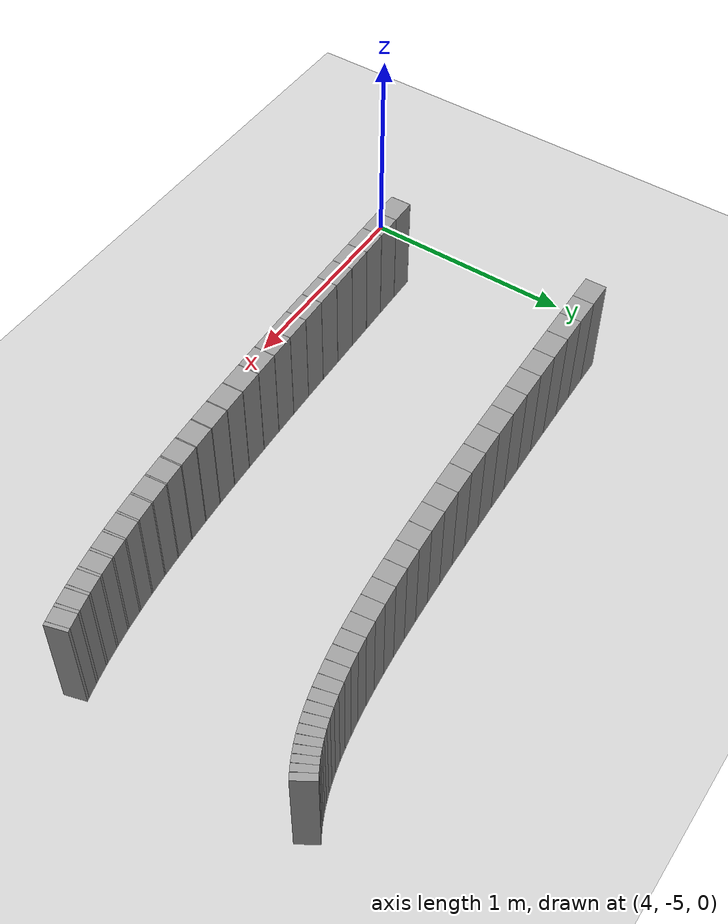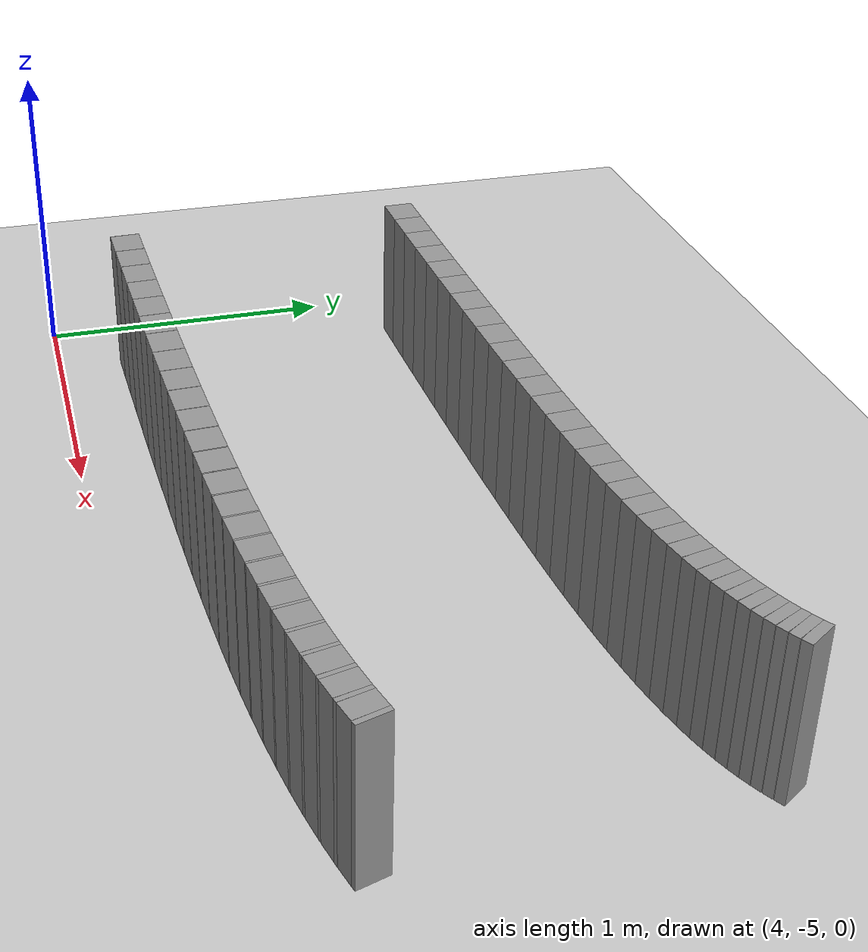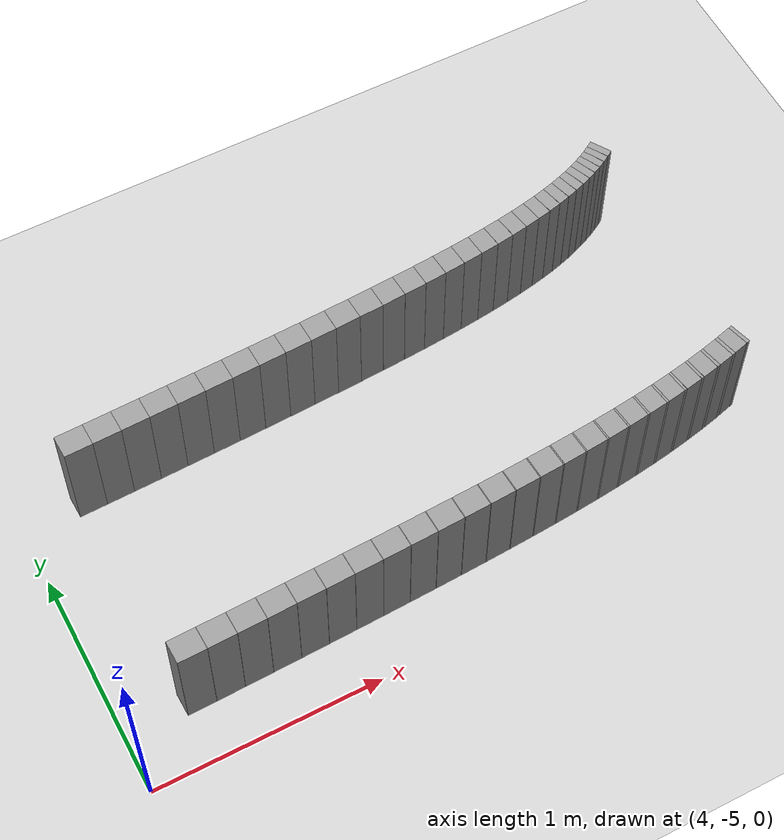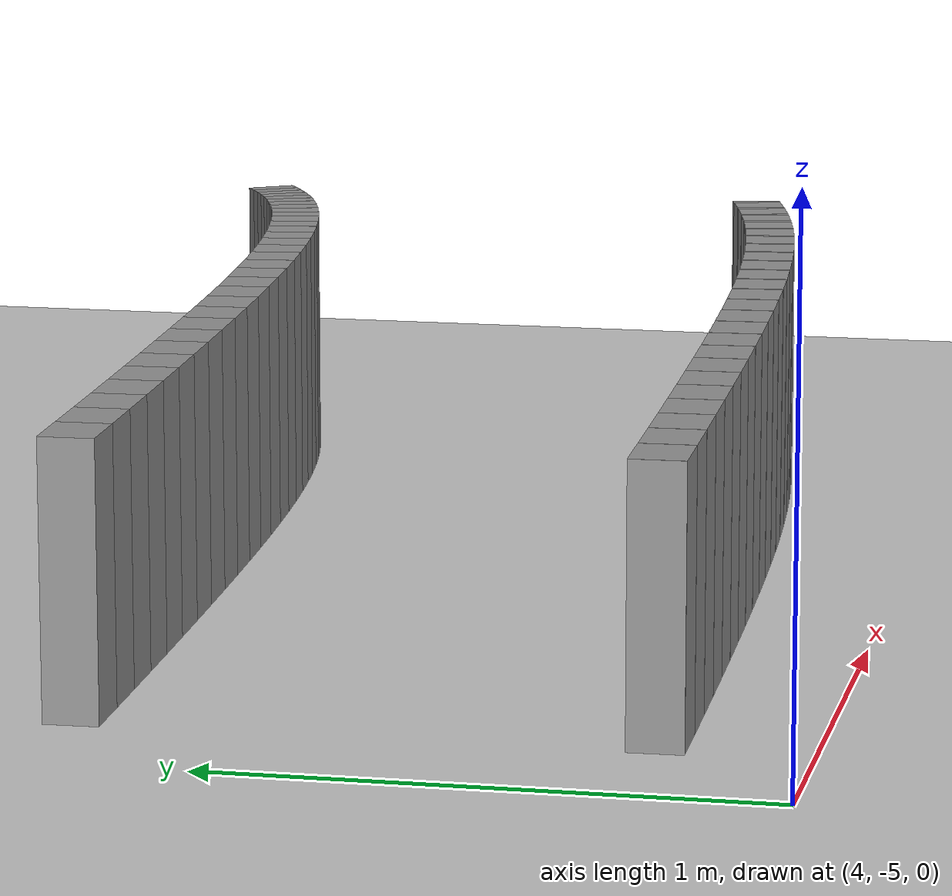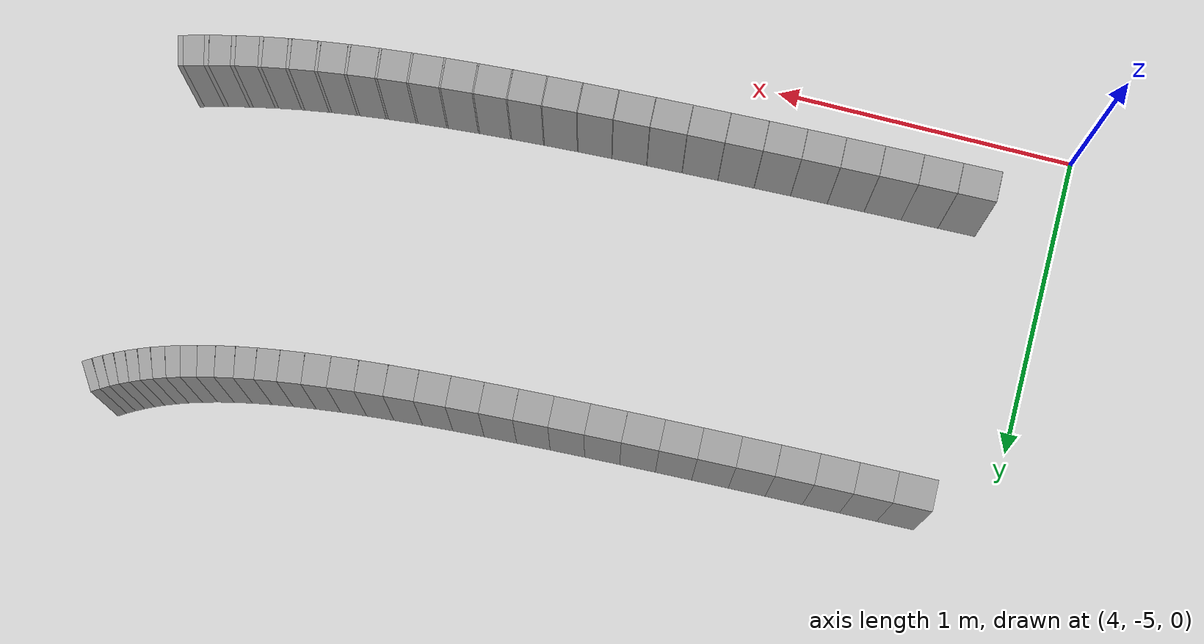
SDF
<sdf version="1.6">
 <world name="default">
  <include><uri>model://ground_plane</uri></include>
  <include><uri>model://sun</uri></include>
  <model name="wall_321_outward">
   <static>true</static>
   <link name="link">
    <collision name="collision">
     <geometry><box><size>0.016284881195735904 0.1 0.5</size></box></geometry>
    </collision>
    <visual name="visual">
     <geometry><box><size>0.016284881195735904 0.1 0.5</size></box></geometry>
     <material>
      <script><uri>file://media/materials/scripts/gazebo.material</uri><name>Gazebo/Gray</name></script>
     </material>
    </visual>
   </link>
   <pose>6.8706232250693535 -4.524469755336314 0.25 0 0 -2.8617187133901116</pose>
  </model>
  <model name="wall_322_outward">
   <static>true</static>
   <link name="link">
    <collision name="collision">
     <geometry><box><size>0.06675246878752088 0.1 0.5</size></box></geometry>
    </collision>
    <visual name="visual">
     <geometry><box><size>0.06675246878752088 0.1 0.5</size></box></geometry>
     <material>
      <script><uri>file://media/materials/scripts/gazebo.material</uri><name>Gazebo/Gray</name></script>
     </material>
    </visual>
   </link>
   <pose>6.830574143133701 -4.535415043514214 0.25 0 0 -2.8780043144562817</pose>
  </model>
  <model name="wall_323_outward">
   <static>true</static>
   <link name="link">
    <collision name="collision">
     <geometry><box><size>0.015074363451593187 0.1 0.5</size></box></geometry>
    </collision>
    <visual name="visual">
     <geometry><box><size>0.015074363451593187 0.1 0.5</size></box></geometry>
     <material>
      <script><uri>file://media/materials/scripts/gazebo.material</uri><name>Gazebo/Gray</name></script>
     </material>
    </visual>
   </link>
   <pose>6.791045048589535 -4.545964978851544 0.25 0 0 -2.8930792488737502</pose>
  </model>
  <model name="wall_324_outward">
   <static>true</static>
   <link name="link">
    <collision name="collision">
     <geometry><box><size>0.07023694185846778 0.1 0.5</size></box></geometry>
    </collision>
    <visual name="visual">
     <geometry><box><size>0.07023694185846778 0.1 0.5</size></box></geometry>
     <material>
      <script><uri>file://media/materials/scripts/gazebo.material</uri><name>Gazebo/Gray</name></script>
     </material>
    </visual>
   </link>
   <pose>6.749573471816234 -4.55594259739293 0.25 0 0 -2.908154183291117</pose>
  </model>
  <model name="wall_325_outward">
   <static>true</static>
   <link name="link">
    <collision name="collision">
     <geometry><box><size>0.013815712884839529 0.1 0.5</size></box></geometry>
    </collision>
    <visual name="visual">
     <geometry><box><size>0.013815712884839529 0.1 0.5</size></box></geometry>
     <material>
      <script><uri>file://media/materials/scripts/gazebo.material</uri><name>Gazebo/Gray</name></script>
     </material>
    </visual>
   </link>
   <pose>6.708665599710844 -4.565571298510074 0.25 0 0 -2.9219703357235964</pose>
  </model>
  <model name="wall_326_outward">
   <static>true</static>
   <link name="link">
    <collision name="collision">
     <geometry><box><size>0.07394708657889154 0.1 0.5</size></box></geometry>
    </collision>
    <visual name="visual">
     <geometry><box><size>0.07394708657889154 0.1 0.5</size></box></geometry>
     <material>
      <script><uri>file://media/materials/scripts/gazebo.material</uri><name>Gazebo/Gray</name></script>
     </material>
    </visual>
   </link>
   <pose>6.665730397106101 -4.574632030637089 0.25 0 0 -2.935786488156076</pose>
  </model>
  <model name="wall_327_outward">
   <static>true</static>
   <link name="link">
    <collision name="collision">
     <geometry><box><size>0.012546293367395168 0.1 0.5</size></box></geometry>
    </collision>
    <visual name="visual">
     <geometry><box><size>0.012546293367395168 0.1 0.5</size></box></geometry>
     <material>
      <script><uri>file://media/materials/scripts/gazebo.material</uri><name>Gazebo/Gray</name></script>
     </material>
    </visual>
   </link>
   <pose>6.623380760675244 -4.583392622896973 0.25 0 0 -2.948333110697676</pose>
  </model>
  <model name="wall_328_outward">
   <static>true</static>
   <link name="link">
    <collision name="collision">
     <geometry><box><size>0.07782937117657446 0.1 0.5</size></box></geometry>
    </collision>
    <visual name="visual">
     <geometry><box><size>0.07782937117657446 0.1 0.5</size></box></geometry>
     <material>
      <script><uri>file://media/materials/scripts/gazebo.material</uri><name>Gazebo/Gray</name></script>
     </material>
    </visual>
   </link>
   <pose>6.578943407078501 -4.591591608372864 0.25 0 0 -2.960879733239329</pose>
  </model>
  <model name="wall_329_outward">
   <static>true</static>
   <link name="link">
    <collision name="collision">
     <geometry><box><size>0.011294293351724943 0.1 0.5</size></box></geometry>
    </collision>
    <visual name="visual">
     <geometry><box><size>0.011294293351724943 0.1 0.5</size></box></geometry>
     <material>
      <script><uri>file://media/materials/scripts/gazebo.material</uri><name>Gazebo/Gray</name></script>
     </material>
    </visual>
   </link>
   <pose>6.535096119194367 -4.599537941276894 0.25 0 0 -2.9721742667235302</pose>
  </model>
  <model name="wall_330_outward">
   <static>true</static>
   <link name="link">
    <collision name="collision">
     <geometry><box><size>0.08182628097295579 0.1 0.5</size></box></geometry>
    </collision>
    <visual name="visual">
     <geometry><box><size>0.08182628097295579 0.1 0.5</size></box></geometry>
     <material>
      <script><uri>file://media/materials/scripts/gazebo.material</uri><name>Gazebo/Gray</name></script>
     </material>
    </visual>
   </link>
   <pose>6.489127096165799 -4.606932519660496 0.25 0 0 -2.9834688002077003</pose>
  </model>
  <model name="wall_331_outward">
   <static>true</static>
   <link name="link">
    <collision name="collision">
     <geometry><box><size>0.010081128905444778 0.1 0.5</size></box></geometry>
    </collision>
    <visual name="visual">
     <geometry><box><size>0.010081128905444778 0.1 0.5</size></box></geometry>
     <material>
      <script><uri>file://media/materials/scripts/gazebo.material</uri><name>Gazebo/Gray</name></script>
     </material>
    </visual>
   </link>
   <pose>6.443738940358317 -4.614118433032928 0.25 0 0 -2.9935500998770435</pose>
  </model>
  <model name="wall_332_outward">
   <static>true</static>
   <link name="link">
    <collision name="collision">
     <geometry><box><size>0.08588152892066375 0.1 0.5</size></box></geometry>
    </collision>
    <visual name="visual">
     <geometry><box><size>0.08588152892066375 0.1 0.5</size></box></geometry>
     <material>
      <script><uri>file://media/materials/scripts/gazebo.material</uri><name>Gazebo/Gray</name></script>
     </material>
    </visual>
   </link>
   <pose>6.396220751281994 -4.620767315150769 0.25 0 0 -3.00363139954643</pose>
  </model>
  <model name="wall_333_outward">
   <static>true</static>
   <link name="link">
    <collision name="collision">
     <geometry><box><size>0.00892297963676916 0.1 0.5</size></box></geometry>
    </collision>
    <visual name="visual">
     <geometry><box><size>0.00892297963676916 0.1 0.5</size></box></geometry>
     <material>
      <script><uri>file://media/materials/scripts/gazebo.material</uri><name>Gazebo/Gray</name></script>
     </material>
    </visual>
   </link>
   <pose>6.3492635939150475 -4.6272468081029245 0.25 0 0 -3.0125544975947935</pose>
  </model>
  <model name="wall_334_outward">
   <static>true</static>
   <link name="link">
    <collision name="collision">
     <geometry><box><size>0.0899364490261822 0.1 0.5</size></box></geometry>
    </collision>
    <visual name="visual">
     <geometry><box><size>0.0899364490261822 0.1 0.5</size></box></geometry>
     <material>
      <script><uri>file://media/materials/scripts/gazebo.material</uri><name>Gazebo/Gray</name></script>
     </material>
    </visual>
   </link>
   <pose>6.300194974419981 -4.633209296318802 0.25 0 0 -3.0214775956430406</pose>
  </model>
  <model name="wall_335_outward">
   <static>true</static>
   <link name="link">
    <collision name="collision">
     <geometry><box><size>0.00782467770578832 0.1 0.5</size></box></geometry>
    </collision>
    <visual name="visual">
     <geometry><box><size>0.00782467770578832 0.1 0.5</size></box></geometry>
     <material>
      <script><uri>file://media/materials/scripts/gazebo.material</uri><name>Gazebo/Gray</name></script>
     </material>
    </visual>
   </link>
   <pose>6.251663053264009 -4.639036073493887 0.25 0 0 -3.0293023531960386</pose>
  </model>
  <model name="wall_336_outward">
   <static>true</static>
   <link name="link">
    <collision name="collision">
     <geometry><box><size>0.09393741478682598 0.1 0.5</size></box></geometry>
    </collision>
    <visual name="visual">
     <geometry><box><size>0.09393741478682598 0.1 0.5</size></box></geometry>
     <material>
      <script><uri>file://media/materials/scripts/gazebo.material</uri><name>Gazebo/Gray</name></script>
     </material>
    </visual>
   </link>
   <pose>6.201062699600262 -4.644372160580012 0.25 0 0 -3.0371271107491635</pose>
  </model>
  <model name="wall_337_outward">
   <static>true</static>
   <link name="link">
    <collision name="collision">
     <geometry><box><size>0.006793686530829893 0.1 0.5</size></box></geometry>
    </collision>
    <visual name="visual">
     <geometry><box><size>0.006793686530829893 0.1 0.5</size></box></geometry>
     <material>
      <script><uri>file://media/materials/scripts/gazebo.material</uri><name>Gazebo/Gray</name></script>
     </material>
    </visual>
   </link>
   <pose>6.150969391566424 -4.649601101163466 0.25 0 0 -3.043920849540613</pose>
  </model>
  <model name="wall_338_outward">
   <static>true</static>
   <link name="link">
    <collision name="collision"><geometry><box><size>0.097832188326034 0.1 0.5</size></box></geometry></collision>
    <visual name="visual">
     <geometry><box><size>0.097832188326034 0.1 0.5</size></box></geometry>
     <material>
      <script><uri>file://media/materials/scripts/gazebo.material</uri><name>Gazebo/Gray</name></script>
     </material>
    </visual>
   </link>
   <pose>6.098874499526229 -4.654371633275395 0.25 0 0 -3.050714588331997</pose>
  </model>
  <model name="wall_339_outward">
   <static>true</static>
   <link name="link">
    <collision name="collision">
     <geometry><box><size>0.005836300525711811 0.1 0.5</size></box></geometry>
    </collision>
    <visual name="visual">
     <geometry><box><size>0.005836300525711811 0.1 0.5</size></box></geometry>
     <material>
      <script><uri>file://media/materials/scripts/gazebo.material</uri><name>Gazebo/Gray</name></script>
     </material>
    </visual>
   </link>
   <pose>6.047252656607898 -4.659058782371988 0.25 0 0 -3.0565509219912914</pose>
  </model>
  <model name="wall_340_outward">
   <static>true</static>
   <link name="link">
    <collision name="collision">
     <geometry><box><size>0.10157281790004317 0.1 0.5</size></box></geometry>
    </collision>
    <visual name="visual">
     <geometry><box><size>0.10157281790004317 0.1 0.5</size></box></geometry>
     <material>
      <script><uri>file://media/materials/scripts/gazebo.material</uri><name>Gazebo/Gray</name></script>
     </material>
    </visual>
   </link>
   <pose>5.993717864086115 -4.663325001040443 0.25 0 0 -3.062387255650578</pose>
  </model>
  <model name="wall_341_outward">
   <static>true</static>
   <link name="link">
    <collision name="collision">
     <geometry><box><size>0.004951340991331407 0.1 0.5</size></box></geometry>
    </collision>
    <visual name="visual">
     <geometry><box><size>0.004951340991331407 0.1 0.5</size></box></geometry>
     <material>
      <script><uri>file://media/materials/scripts/gazebo.material</uri><name>Gazebo/Gray</name></script>
     </material>
    </visual>
   </link>
   <pose>5.940621827387737 -4.667527013820703 0.25 0 0 -3.0673386168731174</pose>
  </model>
  <model name="wall_342_outward">
   <static>true</static>
   <link name="link">
    <collision name="collision">
     <geometry><box><size>0.10511688703927576 0.1 0.5</size></box></geometry>
    </collision>
    <visual name="visual">
     <geometry><box><size>0.10511688703927576 0.1 0.5</size></box></geometry>
     <material>
      <script><uri>file://media/materials/scripts/gazebo.material</uri><name>Gazebo/Gray</name></script>
     </material>
    </visual>
   </link>
   <pose>5.885720700178911 -4.67135019923357 0.25 0 0 -3.0722899780956783</pose>
  </model>
  <model name="wall_343_outward">
   <static>true</static>
   <link name="link">
    <collision name="collision">
     <geometry><box><size>0.004153802481850669 0.1 0.5</size></box></geometry>
    </collision>
    <visual name="visual">
     <geometry><box><size>0.004153802481850669 0.1 0.5</size></box></geometry>
     <material>
      <script><uri>file://media/materials/scripts/gazebo.material</uri><name>Gazebo/Gray</name></script>
     </material>
    </visual>
   </link>
   <pose>5.831215926369204 -4.675124937054639 0.25 0 0 -3.076443792522633</pose>
  </model>
  <model name="wall_344_outward">
   <static>true</static>
   <link name="link">
    <collision name="collision">
     <geometry><box><size>0.10842575435619659 0.1 0.5</size></box></geometry>
    </collision>
    <visual name="visual">
     <geometry><box><size>0.10842575435619659 0.1 0.5</size></box></geometry>
     <material>
      <script><uri>file://media/materials/scripts/gazebo.material</uri><name>Gazebo/Gray</name></script>
     </material>
    </visual>
   </link>
   <pose>5.7750313693804145 -4.678564816079974 0.25 0 0 -3.0805976069495724</pose>
  </model>
  <model name="wall_345_outward">
   <static>true</static>
   <link name="link">
    <collision name="collision">
     <geometry><box><size>0.0034363156079724364 0.1 0.5</size></box></geometry>
    </collision>
    <visual name="visual">
     <geometry><box><size>0.0034363156079724364 0.1 0.5</size></box></geometry>
     <material>
      <script><uri>file://media/materials/scripts/gazebo.material</uri><name>Gazebo/Gray</name></script>
     </material>
    </visual>
   </link>
   <pose>5.719203995162885 -4.6819683234244405 0.25 0 0 -3.084033929320404</pose>
  </model>
  <model name="wall_346_outward">
   <static>true</static>
   <link name="link">
    <collision name="collision">
     <geometry><box><size>0.1114665429488339 0.1 0.5</size></box></geometry>
    </collision>
    <visual name="visual">
     <geometry><box><size>0.1114665429488339 0.1 0.5</size></box></geometry>
     <material>
      <script><uri>file://media/materials/scripts/gazebo.material</uri><name>Gazebo/Gray</name></script>
     </material>
    </visual>
   </link>
   <pose>5.661837019216987 -4.685082109898879 0.25 0 0 -3.0874702516912316</pose>
  </model>
  <model name="wall_347_outward">
   <static>true</static>
   <link name="link">
    <collision name="collision">
     <geometry><box><size>0.0028103656133910398 0.1 0.5</size></box></geometry>
    </collision>
    <visual name="visual">
     <geometry><box><size>0.0028103656133910398 0.1 0.5</size></box></geometry>
     <material>
      <script><uri>file://media/materials/scripts/gazebo.material</uri><name>Gazebo/Gray</name></script>
     </material>
    </visual>
   </link>
   <pose>5.6047820223842795 -4.68816912714953 0.25 0 0 -3.090280621004066</pose>
  </model>
  <model name="wall_348_outward">
   <static>true</static>
   <link name="link">
    <collision name="collision">
     <geometry><box><size>0.11421244474526232 0.1 0.5</size></box></geometry>
    </collision>
    <visual name="visual">
     <geometry><box><size>0.11421244474526232 0.1 0.5</size></box></geometry>
     <material>
      <script><uri>file://media/materials/scripts/gazebo.material</uri><name>Gazebo/Gray</name></script>
     </material>
    </visual>
   </link>
   <pose>5.5463396221655845 -4.691009859264866 0.25 0 0 -3.0930909903169406</pose>
  </model>
  <model name="wall_349_outward">
   <static>true</static>
   <link name="link">
    <collision name="collision">
     <geometry><box><size>0.002275194288329941 0.1 0.5</size></box></geometry>
    </collision>
    <visual name="visual">
     <geometry><box><size>0.002275194288329941 0.1 0.5</size></box></geometry>
     <material>
      <script><uri>file://media/materials/scripts/gazebo.material</uri><name>Gazebo/Gray</name></script>
     </material>
    </visual>
   </link>
   <pose>5.488164173386438 -4.693831088600366 0.25 0 0 -3.0953661865681115</pose>
  </model>
  <model name="wall_350_outward">
   <static>true</static>
   <link name="link">
    <collision name="collision">
     <geometry><box><size>0.1166410621612993 0.1 0.5</size></box></geometry>
    </collision>
    <visual name="visual">
     <geometry><box><size>0.1166410621612993 0.1 0.5</size></box></geometry>
     <material>
      <script><uri>file://media/materials/scripts/gazebo.material</uri><name>Gazebo/Gray</name></script>
     </material>
    </visual>
   </link>
   <pose>5.428763580635043 -4.696446093255068 0.25 0 0 -3.0976413828194636</pose>
  </model>
  <model name="wall_351_outward">
   <static>true</static>
   <link name="link">
    <collision name="collision">
     <geometry><box><size>0.0018359589937618677 0.1 0.5</size></box></geometry>
    </collision>
    <visual name="visual">
     <geometry><box><size>0.0018359589937618677 0.1 0.5</size></box></geometry>
     <material>
      <script><uri>file://media/materials/scripts/gazebo.material</uri><name>Gazebo/Gray</name></script>
     </material>
    </visual>
   </link>
   <pose>5.369582204279025 -4.699047179103626 0.25 0 0 -3.099477342844979</pose>
  </model>
  <model name="wall_352_outward">
   <static>true</static>
   <link name="link">
    <collision name="collision">
     <geometry><box><size>0.11873510624275971 0.1 0.5</size></box></geometry>
    </collision>
    <visual name="visual">
     <geometry><box><size>0.11873510624275971 0.1 0.5</size></box></geometry>
     <material>
      <script><uri>file://media/materials/scripts/gazebo.material</uri><name>Gazebo/Gray</name></script>
     </material>
    </visual>
   </link>
   <pose>5.309345638873005 -4.701476468599325 0.25 0 0 -3.1013133028698405</pose>
  </model>
  <model name="wall_353_outward">
   <static>true</static>
   <link name="link">
    <collision name="collision">
     <geometry><box><size>0.0014853704478323636 0.1 0.5</size></box></geometry>
    </collision>
    <visual name="visual">
     <geometry><box><size>0.0014853704478323636 0.1 0.5</size></box></geometry>
     <material>
      <script><uri>file://media/materials/scripts/gazebo.material</uri><name>Gazebo/Gray</name></script>
     </material>
    </visual>
   </link>
   <pose>5.2492841125409 -4.703895913020326 0.25 0 0 -3.10279867386343</pose>
  </model>
  <model name="wall_354_outward">
   <static>true</static>
   <link name="link">
    <collision name="collision">
     <geometry><box><size>0.12048758637861878 0.1 0.5</size></box></geometry>
    </collision>
    <visual name="visual">
     <geometry><box><size>0.12048758637861878 0.1 0.5</size></box></geometry>
     <material>
      <script><uri>file://media/materials/scripts/gazebo.material</uri><name>Gazebo/Gray</name></script>
     </material>
    </visual>
   </link>
   <pose>5.18834011569537 -4.706171808233851 0.25 0 0 -3.1042840448579105</pose>
  </model>
  <model name="wall_355_outward">
   <static>true</static>
   <link name="link">
    <collision name="collision">
     <geometry><box><size>0.001227804592921208 0.1 0.5</size></box></geometry>
    </collision>
    <visual name="visual">
     <geometry><box><size>0.001227804592921208 0.1 0.5</size></box></geometry>
     <material>
      <script><uri>file://media/materials/scripts/gazebo.material</uri><name>Gazebo/Gray</name></script>
     </material>
    </visual>
   </link>
   <pose>5.127524742539975 -4.708441044240841 0.25 0 0 -3.105511849759619</pose>
  </model>
  <model name="wall_356_outward">
   <static>true</static>
   <link name="link">
    <collision name="collision">
     <geometry><box><size>0.1218961085899758 0.1 0.5</size></box></geometry>
    </collision>
    <visual name="visual">
     <geometry><box><size>0.1218961085899758 0.1 0.5</size></box></geometry>
     <material>
      <script><uri>file://media/materials/scripts/gazebo.material</uri><name>Gazebo/Gray</name></script>
     </material>
    </visual>
   </link>
   <pose>5.06600019951636 -4.71058698196075 0.25 0 0 -3.1067396546607258</pose>
  </model>
  <model name="wall_357_outward">
   <static>true</static>
   <link name="link">
    <collision name="collision">
     <geometry><box><size>0.0010502810733152683 0.1 0.5</size></box></geometry>
    </collision>
    <visual name="visual">
     <geometry><box><size>0.0010502810733152683 0.1 0.5</size></box></geometry>
     <material>
      <script><uri>file://media/materials/scripts/gazebo.material</uri><name>Gazebo/Gray</name></script>
     </material>
    </visual>
   </link>
   <pose>5.004564318689852 -4.712728522194939 0.25 0 0 -3.1077899359271646</pose>
  </model>
  <model name="wall_358_outward">
   <static>true</static>
   <link name="link">
    <collision name="collision">
     <geometry><box><size>0.12296700610989748 0.1 0.5</size></box></geometry>
    </collision>
    <visual name="visual">
     <geometry><box><size>0.12296700610989748 0.1 0.5</size></box></geometry>
     <material>
      <script><uri>file://media/materials/scripts/gazebo.material</uri><name>Gazebo/Gray</name></script>
     </material>
    </visual>
   </link>
   <pose>4.942588949496785 -4.714759644504891 0.25 0 0 -3.108840217193543</pose>
  </model>
  <model name="wall_359_outward">
   <static>true</static>
   <link name="link">
    <collision name="collision">
     <geometry><box><size>0.0009462968796259451 0.1 0.5</size></box></geometry>
    </collision>
    <visual name="visual">
     <geometry><box><size>0.0009462968796259451 0.1 0.5</size></box></geometry>
     <material>
      <script><uri>file://media/materials/scripts/gazebo.material</uri><name>Gazebo/Gray</name></script>
     </material>
    </visual>
   </link>
   <pose>4.880665511715634 -4.716788065505852 0.25 0 0 -3.1097865142137535</pose>
  </model>
  <model name="wall_360_outward">
   <static>true</static>
   <link name="link">
    <collision name="collision">
     <geometry><box><size>0.12371406341264457 0.1 0.5</size></box></geometry>
    </collision>
    <visual name="visual">
     <geometry><box><size>0.12371406341264457 0.1 0.5</size></box></geometry>
     <material>
      <script><uri>file://media/materials/scripts/gazebo.material</uri><name>Gazebo/Gray</name></script>
     </material>
    </visual>
   </link>
   <pose>4.818365022687075 -4.718711707271793 0.25 0 0 -3.110732811235264</pose>
  </model>
  <model name="wall_361_outward">
   <static>true</static>
   <link name="link">
    <collision name="collision">
     <geometry><box><size>0.0009002511719765517 0.1 0.5</size></box></geometry>
    </collision>
    <visual name="visual">
     <geometry><box><size>0.0009002511719765517 0.1 0.5</size></box></geometry>
     <material>
      <script><uri>file://media/materials/scripts/gazebo.material</uri><name>Gazebo/Gray</name></script>
     </material>
    </visual>
   </link>
   <pose>4.756087519202919 -4.720633786110907 0.25 0 0 -3.1116330625287283</pose>
  </model>
  <model name="wall_362_outward">
   <static>true</static>
   <link name="link">
    <collision name="collision">
     <geometry><box><size>0.12416035873051691 0.1 0.5</size></box></geometry>
    </collision>
    <visual name="visual">
     <geometry><box><size>0.12416035873051691 0.1 0.5</size></box></geometry>
     <material>
      <script><uri>file://media/materials/scripts/gazebo.material</uri><name>Gazebo/Gray</name></script>
     </material>
    </visual>
   </link>
   <pose>4.6935836260588975 -4.7224510248100025 0.25 0 0 -3.1125333138224134</pose>
  </model>
  <model name="wall_363_outward">
   <static>true</static>
   <link name="link">
    <collision name="collision">
     <geometry><box><size>0.0009015595712885704 0.1 0.5</size></box></geometry>
    </collision>
    <visual name="visual">
     <geometry><box><size>0.0009015595712885704 0.1 0.5</size></box></geometry>
     <material>
      <script><uri>file://media/materials/scripts/gazebo.material</uri><name>Gazebo/Gray</name></script>
     </material>
    </visual>
   </link>
   <pose>4.631079055410075 -4.724267471228757 0.25 0 0 -3.113434873515021</pose>
  </model>
  <model name="wall_364_outward">
   <static>true</static>
   <link name="link">
    <collision name="collision">
     <geometry><box><size>0.12433654630418758 0.1 0.5</size></box></geometry>
    </collision>
    <visual name="visual">
     <geometry><box><size>0.12433654630418758 0.1 0.5</size></box></geometry>
     <material>
      <script><uri>file://media/materials/scripts/gazebo.material</uri><name>Gazebo/Gray</name></script>
     </material>
    </visual>
   </link>
   <pose>4.568483272186933 -4.725974424866772 0.25 0 0 -3.1143364332092567</pose>
  </model>
  <model name="wall_365_outward">
   <static>true</static>
   <link name="link">
    <collision name="collision">
     <geometry><box><size>0.0009382277129141795 0.1 0.5</size></box></geometry>
    </collision>
    <visual name="visual">
     <geometry><box><size>0.0009382277129141795 0.1 0.5</size></box></geometry>
     <material>
      <script><uri>file://media/materials/scripts/gazebo.material</uri><name>Gazebo/Gray</name></script>
     </material>
    </visual>
   </link>
   <pose>4.505869138655392 -4.727681031933733 0.25 0 0 -3.1152746610599014</pose>
  </model>
  <model name="wall_366_outward">
   <static>true</static>
   <link name="link">
    <collision name="collision">
     <geometry><box><size>0.12428098783980553 0.1 0.5</size></box></geometry>
    </collision>
    <visual name="visual">
     <geometry><box><size>0.12428098783980553 0.1 0.5</size></box></geometry>
     <material>
      <script><uri>file://media/materials/scripts/gazebo.material</uri><name>Gazebo/Gray</name></script>
     </material>
    </visual>
   </link>
   <pose>4.443279705612609 -4.729270318450314 0.25 0 0 -3.116212888910383</pose>
  </model>
  <model name="wall_367_outward">
   <static>true</static>
   <link name="link">
    <collision name="collision">
     <geometry><box><size>0.0009874221262272578 0.1 0.5</size></box></geometry>
    </collision>
    <visual name="visual">
     <geometry><box><size>0.0009874221262272578 0.1 0.5</size></box></geometry>
     <material>
      <script><uri>file://media/materials/scripts/gazebo.material</uri><name>Gazebo/Gray</name></script>
     </material>
    </visual>
   </link>
   <pose>4.380665659778195 -4.730859301832224 0.25 0 0 -3.1172003111970783</pose>
  </model>
  <model name="wall_368_outward">
   <static>true</static>
   <link name="link">
    <collision name="collision">
     <geometry><box><size>0.12404122186382421 0.1 0.5</size></box></geometry>
    </collision>
    <visual name="visual">
     <geometry><box><size>0.12404122186382421 0.1 0.5</size></box></geometry>
     <material>
      <script><uri>file://media/materials/scripts/gazebo.material</uri><name>Gazebo/Gray</name></script>
     </material>
    </visual>
   </link>
   <pose>4.318168471020202 -4.732322798327175 0.25 0 0 -3.1181877334837504</pose>
  </model>
  <model name="wall_369_outward">
   <static>true</static>
   <link name="link">
    <collision name="collision">
     <geometry><box><size>0.0010400322830958265 0.1 0.5</size></box></geometry>
    </collision>
    <visual name="visual">
     <geometry><box><size>0.0010400322830958265 0.1 0.5</size></box></geometry>
     <material>
      <script><uri>file://media/materials/scripts/gazebo.material</uri><name>Gazebo/Gray</name></script>
     </material>
    </visual>
   </link>
   <pose>4.255644960362929 -4.73378588238007 0.25 0 0 -3.119227765954876</pose>
  </model>
  <model name="wall_196_inward">
   <static>true</static>
   <link name="link">
    <collision name="collision">
     <geometry><box><size>0.03110894618857347 0.1 0.5</size></box></geometry>
    </collision>
    <visual name="visual">
     <geometry><box><size>0.03110894618857347 0.1 0.5</size></box></geometry>
     <material>
      <script><uri>file://media/materials/scripts/gazebo.material</uri><name>Gazebo/Gray</name></script>
     </material>
    </visual>
   </link>
   <pose>6.8498078187955915 -3.453185847630043 0.25 0 0 -2.5760147945793763</pose>
  </model>
  <model name="wall_197_inward">
   <static>true</static>
   <link name="link">
    <collision name="collision">
     <geometry><box><size>0.03157770775845088 0.1 0.5</size></box></geometry>
    </collision>
    <visual name="visual">
     <geometry><box><size>0.03157770775845088 0.1 0.5</size></box></geometry>
     <material>
      <script><uri>file://media/materials/scripts/gazebo.material</uri><name>Gazebo/Gray</name></script>
     </material>
    </visual>
   </link>
   <pose>6.823019005612176 -3.4694454359406866 0.25 0 0 -2.615837976969041</pose>
  </model>
  <model name="wall_198_inward">
   <static>true</static>
   <link name="link">
    <collision name="collision">
     <geometry><box><size>0.032593342122534966 0.1 0.5</size></box></geometry>
    </collision>
    <visual name="visual">
     <geometry><box><size>0.032593342122534966 0.1 0.5</size></box></geometry>
     <material>
      <script><uri>file://media/materials/scripts/gazebo.material</uri><name>Gazebo/Gray</name></script>
     </material>
    </visual>
   </link>
   <pose>6.794949648517086 -3.4849753049889345 0.25 0 0 -2.656014273669134</pose>
  </model>
  <model name="wall_199_inward">
   <static>true</static>
   <link name="link">
    <collision name="collision">
     <geometry><box><size>0.03421416826910852 0.1 0.5</size></box></geometry>
    </collision>
    <visual name="visual">
     <geometry><box><size>0.03421416826910852 0.1 0.5</size></box></geometry>
     <material>
      <script><uri>file://media/materials/scripts/gazebo.material</uri><name>Gazebo/Gray</name></script>
     </material>
    </visual>
   </link>
   <pose>6.765099508758661 -3.499953038024329 0.25 0 0 -2.6960827682722615</pose>
  </model>
  <model name="wall_200_inward">
   <static>true</static>
   <link name="link">
    <collision name="collision">
     <geometry><box><size>0.03645715833126457 0.1 0.5</size></box></geometry>
    </collision>
    <visual name="visual">
     <geometry><box><size>0.03645715833126457 0.1 0.5</size></box></geometry>
     <material>
      <script><uri>file://media/materials/scripts/gazebo.material</uri><name>Gazebo/Gray</name></script>
     </material>
    </visual>
   </link>
   <pose>6.732915954282604 -3.5145250244398225 0.25 0 0 -2.735528011002493</pose>
  </model>
  <model name="wall_201_inward">
   <static>true</static>
   <link name="link">
    <collision name="collision">
     <geometry><box><size>0.03931637489765671 0.1 0.5</size></box></geometry>
    </collision>
    <visual name="visual">
     <geometry><box><size>0.03931637489765671 0.1 0.5</size></box></geometry>
     <material>
      <script><uri>file://media/materials/scripts/gazebo.material</uri><name>Gazebo/Gray</name></script>
     </material>
    </visual>
   </link>
   <pose>6.69782569380564 -3.5287922614453775 0.25 0 0 -2.773866984509661</pose>
  </model>
  <model name="wall_202_inward">
   <static>true</static>
   <link name="link">
    <collision name="collision">
     <geometry><box><size>0.04275095841892648 0.1 0.5</size></box></geometry>
    </collision>
    <visual name="visual">
     <geometry><box><size>0.04275095841892648 0.1 0.5</size></box></geometry>
     <material>
      <script><uri>file://media/materials/scripts/gazebo.material</uri><name>Gazebo/Gray</name></script>
     </material>
    </visual>
   </link>
   <pose>6.659266314015024 -3.5428054105012907 0.25 0 0 -2.8106246376743487</pose>
  </model>
  <model name="wall_203_inward">
   <static>true</static>
   <link name="link">
    <collision name="collision">
     <geometry><box><size>0.0466950934600247 0.1 0.5</size></box></geometry>
    </collision>
    <visual name="visual">
     <geometry><box><size>0.0466950934600247 0.1 0.5</size></box></geometry>
     <material>
      <script><uri>file://media/materials/scripts/gazebo.material</uri><name>Gazebo/Gray</name></script>
     </material>
    </visual>
   </link>
   <pose>6.6167198234031614 -3.5565655182323397 0.25 0 0 -2.845433112323858</pose>
  </model>
  <model name="wall_204_inward">
   <static>true</static>
   <link name="link">
    <collision name="collision">
     <geometry><box><size>0.0510709100650867 0.1 0.5</size></box></geometry>
    </collision>
    <visual name="visual">
     <geometry><box><size>0.0510709100650867 0.1 0.5</size></box></geometry>
     <material>
      <script><uri>file://media/materials/scripts/gazebo.material</uri><name>Gazebo/Gray</name></script>
     </material>
    </visual>
   </link>
   <pose>6.569735233979236 -3.5700326554817305 0.25 0 0 -2.8780043144562963</pose>
  </model>
  <model name="wall_205_inward">
   <static>true</static>
   <link name="link">
    <collision name="collision">
     <geometry><box><size>0.055790387823901305 0.1 0.5</size></box></geometry>
    </collision>
    <visual name="visual">
     <geometry><box><size>0.055790387823901305 0.1 0.5</size></box></geometry>
     <material>
      <script><uri>file://media/materials/scripts/gazebo.material</uri><name>Gazebo/Gray</name></script>
     </material>
    </visual>
   </link>
   <pose>6.517943155727339 -3.5831386624999935 0.25 0 0 -2.908154183291112</pose>
  </model>
  <model name="wall_206_inward">
   <static>true</static>
   <link name="link">
    <collision name="collision">
     <geometry><box><size>0.060764930308875746 0.1 0.5</size></box></geometry>
    </collision>
    <visual name="visual">
     <geometry><box><size>0.060764930308875746 0.1 0.5</size></box></geometry>
     <material>
      <script><uri>file://media/materials/scripts/gazebo.material</uri><name>Gazebo/Gray</name></script>
     </material>
    </visual>
   </link>
   <pose>6.461063279673903 -3.5958003434667836 0.25 0 0 -2.935786488156077</pose>
  </model>
  <model name="wall_207_inward">
   <static>true</static>
   <link name="link">
    <collision name="collision">
     <geometry><box><size>0.06590822381989261 0.1 0.5</size></box></geometry>
    </collision>
    <visual name="visual">
     <geometry><box><size>0.06590822381989261 0.1 0.5</size></box></geometry>
     <material>
      <script><uri>file://media/materials/scripts/gazebo.material</uri><name>Gazebo/Gray</name></script>
     </material>
    </visual>
   </link>
   <pose>6.398904508267611 -3.6079320672074378 0.25 0 0 -2.9608797332393313</pose>
  </model>
  <model name="wall_208_inward">
   <static>true</static>
   <link name="link">
    <collision name="collision">
     <geometry><box><size>0.07113795347818494 0.1 0.5</size></box></geometry>
    </collision>
    <visual name="visual">
     <geometry><box><size>0.07113795347818494 0.1 0.5</size></box></geometry>
     <material>
      <script><uri>file://media/materials/scripts/gazebo.material</uri><name>Gazebo/Gray</name></script>
     </material>
    </visual>
   </link>
   <pose>6.331361793219401 -3.6194558357821927 0.25 0 0 -2.9834688002077003</pose>
  </model>
  <model name="wall_209_inward">
   <static>true</static>
   <link name="link">
    <collision name="collision">
     <geometry><box><size>0.07637904087433486 0.1 0.5</size></box></geometry>
    </collision>
    <visual name="visual">
     <geometry><box><size>0.07637904087433486 0.1 0.5</size></box></geometry>
     <material>
      <script><uri>file://media/materials/scripts/gazebo.material</uri><name>Gazebo/Gray</name></script>
     </material>
    </visual>
   </link>
   <pose>6.258409898950681 -3.630308707820652 0.25 0 0 -3.003631399546431</pose>
  </model>
  <model name="wall_210_inward">
   <static>true</static>
   <link name="link">
    <collision name="collision">
     <geometry><box><size>0.0815623229602381 0.1 0.5</size></box></geometry>
    </collision>
    <visual name="visual">
     <geometry><box><size>0.0815623229602381 0.1 0.5</size></box></geometry>
     <material>
      <script><uri>file://media/materials/scripts/gazebo.material</uri><name>Gazebo/Gray</name></script>
     </material>
    </visual>
   </link>
   <pose>6.180095911558034 -3.640447345744919 0.25 0 0 -3.02147759564304</pose>
  </model>
  <model name="wall_211_inward">
   <static>true</static>
   <link name="link">
    <collision name="collision">
     <geometry><box><size>0.0866280345034615 0.1 0.5</size></box></geometry>
    </collision>
    <visual name="visual">
     <geometry><box><size>0.0866280345034615 0.1 0.5</size></box></geometry>
     <material>
      <script><uri>file://media/materials/scripts/gazebo.material</uri><name>Gazebo/Gray</name></script>
     </material>
    </visual>
   </link>
   <pose>6.09653069614213 -3.649850603901816 0.25 0 0 -3.037127110749163</pose>
  </model>
  <model name="wall_212_inward">
   <static>true</static>
   <link name="link">
    <collision name="collision">
     <geometry><box><size>0.09151706670490647 0.1 0.5</size></box></geometry>
    </collision>
    <visual name="visual">
     <geometry><box><size>0.09151706670490647 0.1 0.5</size></box></geometry>
     <material>
      <script><uri>file://media/materials/scripts/gazebo.material</uri><name>Gazebo/Gray</name></script>
     </material>
    </visual>
   </link>
   <pose>6.007883100487934 -3.658519926144926 0.25 0 0 -3.0507145883319957</pose>
  </model>
  <model name="wall_213_inward">
   <static>true</static>
   <link name="link">
    <collision name="collision">
     <geometry><box><size>0.09617891709358652 0.1 0.5</size></box></geometry>
    </collision>
    <visual name="visual">
     <geometry><box><size>0.09617891709358652 0.1 0.5</size></box></geometry>
     <material>
      <script><uri>file://media/materials/scripts/gazebo.material</uri><name>Gazebo/Gray</name></script>
     </material>
    </visual>
   </link>
   <pose>5.914374700033144 -3.666477614892778 0.25 0 0 -3.0623872556505787</pose>
  </model>
  <model name="wall_214_inward">
   <static>true</static>
   <link name="link">
    <collision name="collision">
     <geometry><box><size>0.10056426703790555 0.1 0.5</size></box></geometry>
    </collision>
    <visual name="visual">
     <geometry><box><size>0.10056426703790555 0.1 0.5</size></box></geometry>
     <material>
      <script><uri>file://media/materials/scripts/gazebo.material</uri><name>Gazebo/Gray</name></script>
     </material>
    </visual>
   </link>
   <pose>5.816274574338198 -3.673764475918314 0.25 0 0 -3.0722899780956787</pose>
  </model>
  <model name="wall_215_inward">
   <static>true</static>
   <link name="link">
    <collision name="collision">
     <geometry><box><size>0.10463066724922422 0.1 0.5</size></box></geometry>
    </collision>
    <visual name="visual">
     <geometry><box><size>0.10463066724922422 0.1 0.5</size></box></geometry>
     <material>
      <script><uri>file://media/materials/scripts/gazebo.material</uri><name>Gazebo/Gray</name></script>
     </material>
    </visual>
   </link>
   <pose>5.713895094622561 -3.6804353715266434 0.25 0 0 -3.0805976069495715</pose>
  </model>
  <model name="wall_216_inward">
   <static>true</static>
   <link name="link">
    <collision name="collision">
     <geometry><box><size>0.10834318664461129 0.1 0.5</size></box></geometry>
    </collision>
    <visual name="visual">
     <geometry><box><size>0.10834318664461129 0.1 0.5</size></box></geometry>
     <material>
      <script><uri>file://media/materials/scripts/gazebo.material</uri><name>Gazebo/Gray</name></script>
     </material>
    </visual>
   </link>
   <pose>5.607584775661056 -3.686554835079506 0.25 0 0 -3.08747025169123</pose>
  </model>
  <model name="wall_217_inward">
   <static>true</static>
   <link name="link">
    <collision name="collision">
     <geometry><box><size>0.11166965630075606 0.1 0.5</size></box></geometry>
    </collision>
    <visual name="visual">
     <geometry><box><size>0.11166965630075606 0.1 0.5</size></box></geometry>
     <material>
      <script><uri>file://media/materials/scripts/gazebo.material</uri><name>Gazebo/Gray</name></script>
     </material>
    </visual>
   </link>
   <pose>5.497723335838234 -3.692192321070523 0.25 0 0 -3.0930909903169423</pose>
  </model>
  <model name="wall_218_inward">
   <static>true</static>
   <link name="link">
    <collision name="collision">
     <geometry><box><size>0.11458548102879718 0.1 0.5</size></box></geometry>
    </collision>
    <visual name="visual">
     <geometry><box><size>0.11458548102879718 0.1 0.5</size></box></geometry>
     <material>
      <script><uri>file://media/materials/scripts/gazebo.material</uri><name>Gazebo/Gray</name></script>
     </material>
    </visual>
   </link>
   <pose>5.384716755234692 -3.69741661960062 0.25 0 0 -3.097641382819464</pose>
  </model>
  <model name="wall_219_inward">
   <static>true</static>
   <link name="link">
    <collision name="collision">
     <geometry><box><size>0.11707443915555028 0.1 0.5</size></box></geometry>
    </collision>
    <visual name="visual">
     <geometry><box><size>0.11707443915555028 0.1 0.5</size></box></geometry>
     <material>
      <script><uri>file://media/materials/scripts/gazebo.material</uri><name>Gazebo/Gray</name></script>
     </material>
    </visual>
   </link>
   <pose>5.268989602571872 -3.702291101404556 0.25 0 0 -3.101313302869839</pose>
  </model>
  <model name="wall_220_inward">
   <static>true</static>
   <link name="link">
    <collision name="collision">
     <geometry><box><size>0.11913099757610096 0.1 0.5</size></box></geometry>
    </collision>
    <visual name="visual">
     <geometry><box><size>0.11913099757610096 0.1 0.5</size></box></geometry>
     <material>
      <script><uri>file://media/materials/scripts/gazebo.material</uri><name>Gazebo/Gray</name></script>
     </material>
    </visual>
   </link>
   <pose>5.150975814704474 -3.706870095457501 0.25 0 0 -3.1042840448579088</pose>
  </model>
  <model name="wall_221_inward">
   <static>true</static>
   <link name="link">
    <collision name="collision">
     <geometry><box><size>0.12075706500453393 0.1 0.5</size></box></geometry>
    </collision>
    <visual name="visual">
     <geometry><box><size>0.12075706500453393 0.1 0.5</size></box></geometry>
     <material>
      <script><uri>file://media/materials/scripts/gazebo.material</uri><name>Gazebo/Gray</name></script>
     </material>
    </visual>
   </link>
   <pose>5.03110990231786 -3.711195832744854 0.25 0 0 -3.106739654660726</pose>
  </model>
  <model name="wall_222_inward">
   <static>true</static>
   <link name="link">
    <collision name="collision">
     <geometry><box><size>0.12196871663183641 0.1 0.5</size></box></geometry>
    </collision>
    <visual name="visual">
     <geometry><box><size>0.12196871663183641 0.1 0.5</size></box></geometry>
     <material>
      <script><uri>file://media/materials/scripts/gazebo.material</uri><name>Gazebo/Gray</name></script>
     </material>
    </visual>
   </link>
   <pose>4.909816386351562 -3.7152968088873344 0.25 0 0 -3.1088402171935448</pose>
  </model>
  <model name="wall_223_inward">
   <static>true</static>
   <link name="link">
    <collision name="collision">
     <geometry><box><size>0.12279078899262935 0.1 0.5</size></box></geometry>
    </collision>
    <visual name="visual">
     <geometry><box><size>0.12279078899262935 0.1 0.5</size></box></geometry>
     <material>
      <script><uri>file://media/materials/scripts/gazebo.material</uri><name>Gazebo/Gray</name></script>
     </material>
    </visual>
   </link>
   <pose>4.787498572263603 -3.7191881896041155 0.25 0 0 -3.110732811235255</pose>
  </model>
  <model name="wall_224_inward">
   <static>true</static>
   <link name="link">
    <collision name="collision">
     <geometry><box><size>0.12325945299342105 0.1 0.5</size></box></geometry>
    </collision>
    <visual name="visual">
     <geometry><box><size>0.12325945299342105 0.1 0.5</size></box></geometry>
     <material>
      <script><uri>file://media/materials/scripts/gazebo.material</uri><name>Gazebo/Gray</name></script>
     </material>
    </visual>
   </link>
   <pose>4.664528702917748 -3.7228732082087292 0.25 0 0 -3.1125333138224134</pose>
  </model>
  <model name="wall_225_inward">
   <static>true</static>
   <link name="link">
    <collision name="collision">
     <geometry><box><size>0.12341665227236857 0.1 0.5</size></box></geometry>
    </collision>
    <visual name="visual">
     <geometry><box><size>0.12341665227236857 0.1 0.5</size></box></geometry>
     <material>
      <script><uri>file://media/materials/scripts/gazebo.material</uri><name>Gazebo/Gray</name></script>
     </material>
    </visual>
   </link>
   <pose>4.541239590104519 -3.726345602817993 0.25 0 0 -3.1143364332092585</pose>
  </model>
  <model name="wall_226_inward">
   <static>true</static>
   <link name="link">
    <collision name="collision">
     <geometry><box><size>0.12331816247304056 0.1 0.5</size></box></geometry>
    </collision>
    <visual name="visual">
     <geometry><box><size>0.12331816247304056 0.1 0.5</size></box></geometry>
     <material>
      <script><uri>file://media/materials/scripts/gazebo.material</uri><name>Gazebo/Gray</name></script>
     </material>
    </visual>
   </link>
   <pose>4.4179149601601235 -3.7295920552879167 0.25 0 0 -3.1162128889103826</pose>
  </model>
  <model name="wall_227_inward">
   <static>true</static>
   <link name="link">
    <collision name="collision">
     <geometry><box><size>0.12302749413728416 0.1 0.5</size></box></geometry>
    </collision>
    <visual name="visual">
     <geometry><box><size>0.12302749413728416 0.1 0.5</size></box></geometry>
     <material>
      <script><uri>file://media/materials/scripts/gazebo.material</uri><name>Gazebo/Gray</name></script>
     </material>
    </visual>
   </link>
   <pose>4.294778836644152 -3.7325963731603977 0.25 0 0 -3.1181877334837487</pose>
  </model>
 </world>
</sdf>
